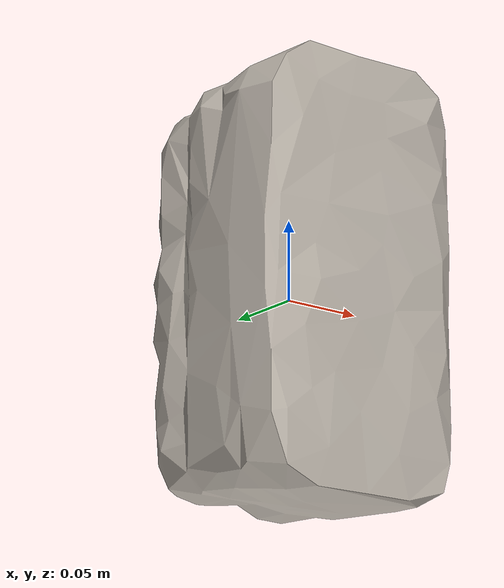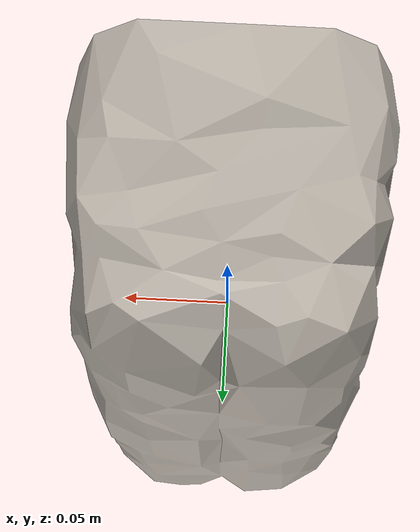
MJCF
<mujoco model="Bread_8">
  <compiler autolimits="true" boundmass="0.01" angle="radian"/>
  <default>
    <default class="/">
      <default class="__VISUAL_MJT__">
        <geom contype="0" conaffinity="0" group="0"/>
      </default>
      <default class="__STRUCTURAL_MJT__">
        <geom contype="8" conaffinity="15" group="4" friction="0.90000000000000002 0.90000000000000002 0.001" solref="0.025000000000000001 1" solimp="0.998 0.998 0.001"/>
      </default>
      <default class="__DYNAMIC_MJT__">
        <geom contype="1" conaffinity="15" group="4" friction="0.90000000000000002 0.90000000000000002 0.001" solref="0.025000000000000001 1" solimp="0.998 0.998 0.001"/>
      </default>
    </default>
  </default>
  <asset>
    <texture name="Bread4_Mat1" type="2d" file="Bread4_AlbedoTransparency.png"/>
    <material name="material_Bread4_Mat1" class="/" texture="Bread4_Mat1" specular="0.5" shininess="0.5" rgba="1 1 1 1"/>
    <mesh name="Bread_8_bread4_a_mesh" class="/" file="Bread_8_bread4_a_mesh/Bread_8_bread4_a_mesh.obj" scale="1 1 1"/>
  </asset>
  <worldbody>
    <body name="Bread_8">
      <joint name="Bread_8_free" class="/" type="free" pos="0 0 0" axis="0 0 1" stiffness="0" range="0 0" armature="0" damping="0.10000000000000001" frictionloss="0"/>
      <body name="Bread_8_bread4_a_mesh" pos="-0 0.00051999999999999995 0" quat="1 0 0 0">
        <geom name="Bread_8_bread4_a_mesh" class="__VISUAL_MJT__" type="mesh" material="material_Bread4_Mat1" shellinertia="false" mesh="Bread_8_bread4_a_mesh"/>
        <geom name="Bread_8_PrimitiveCollider_0" class="__DYNAMIC_MJT__" type="box" size="0.068178892135620117 0.074727058410644531 0.1330617368221283" rgba="0 1 0 1" pos="-0 -0.000522613525390625 0" quat="1 0 0 0"/>
      </body>
    </body>
  </worldbody>
</mujoco>
